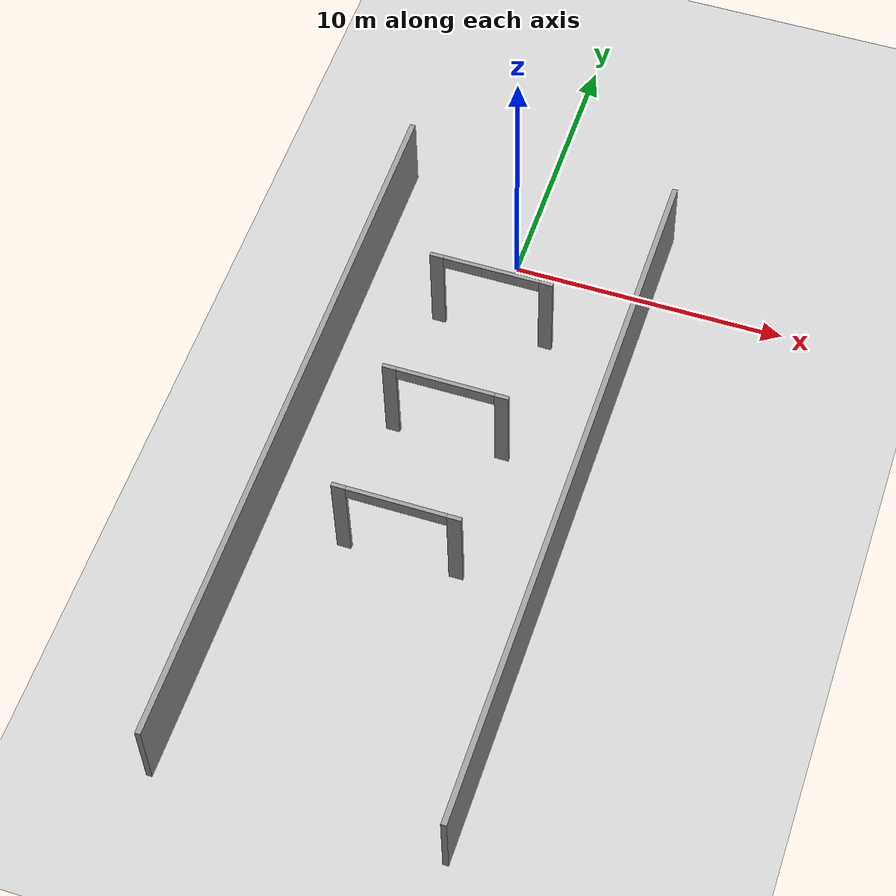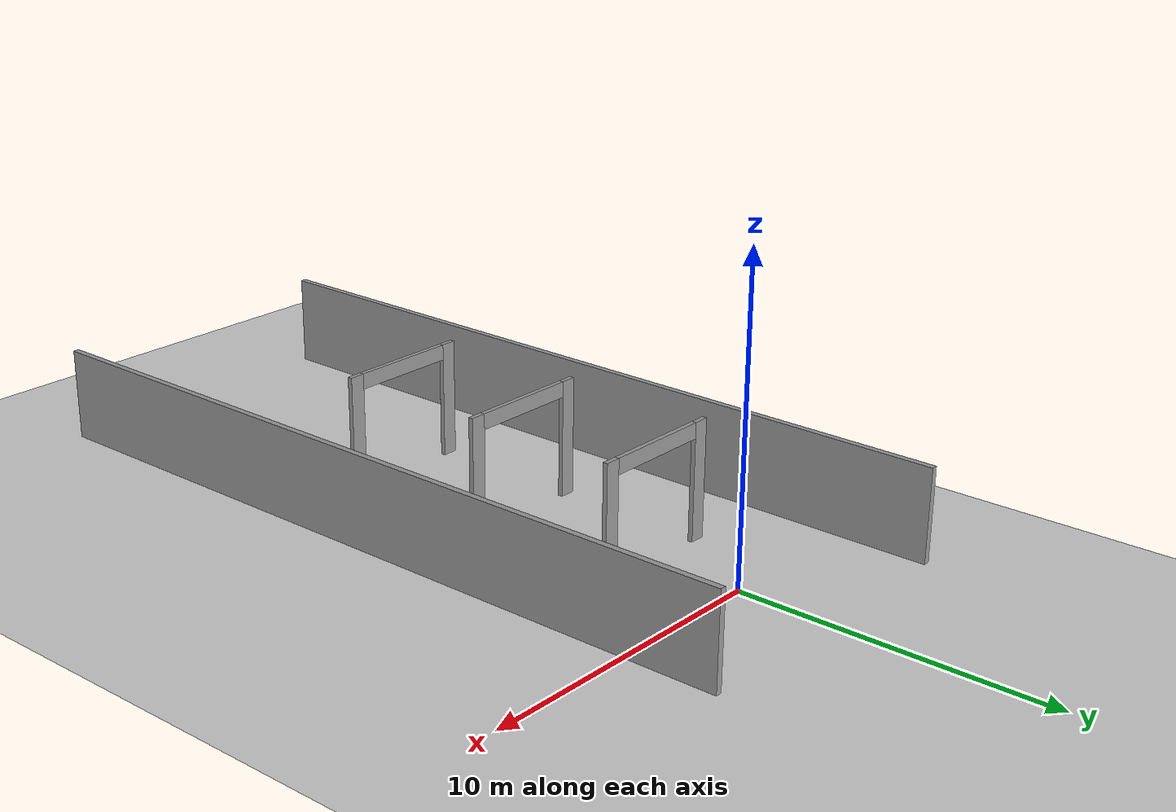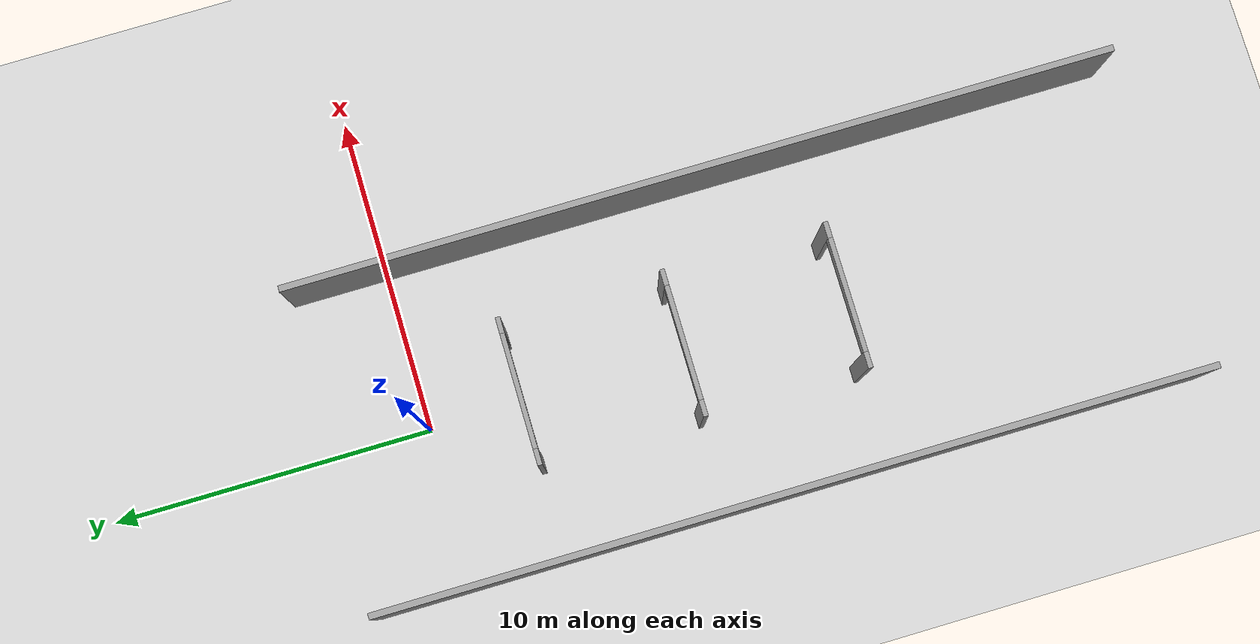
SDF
<sdf version="1.6">
 <world name="default">
  <light name="sun" type="directional">
   <pose>0 0 10 0 -0 0</pose>
   <diffuse>0.8 0.8 0.8 1</diffuse>
   <specular>0.2 0.2 0.2 1</specular>
   <attenuation>
    <range>1000</range>
    <constant>0.9</constant>
    <linear>0.01</linear>
    <quadratic>0.001</quadratic>
   </attenuation>
   <direction>-0.5 0.1 -0.9</direction>
  </light>
  <model name="ground_plane">
   <static>1</static>
   <link name="link">
    <collision name="collision">
     <geometry><plane><normal>0 0 1</normal><size>100 100</size></plane></geometry>
     <surface><friction><ode><mu>100</mu><mu2>50</mu2></ode></friction></surface>
    </collision>
    <visual name="visual">
     <cast_shadows>0</cast_shadows>
     <geometry><plane><normal>0 0 1</normal><size>100 100</size></plane></geometry>
     <material>
      <script><uri>file://media/materials/scripts/gazebo.material</uri><name>Gazebo/Grey</name></script>
     </material>
    </visual>
    <velocity_decay><linear>0</linear><angular>0</angular></velocity_decay>
   </link>
  </model>
  <physics name="default_physics" default="0" type="ode">
   <ode>
    <solver>
     <type>quick</type>
     <iters>10</iters>
     <sor>1.3</sor>
     <use_dynamic_moi_rescaling>0</use_dynamic_moi_rescaling>
    </solver>
    <constraints>
     <cfm>0</cfm>
     <erp>0.2</erp>
     <contact_max_correcting_vel>100</contact_max_correcting_vel>
     <contact_surface_layer>0.001</contact_surface_layer>
    </constraints>
   </ode>
   <max_step_size>0.004</max_step_size>
   <real_time_factor>1</real_time_factor>
   <real_time_update_rate>250</real_time_update_rate>
  </physics>
  <scene><ambient>0.4 0.4 0.4 1</ambient><background>0.7 0.7 0.7 1</background><shadows>1</shadows></scene>
  <spherical_coordinates>
   <surface_model>EARTH_WGS84</surface_model>
   <latitude_deg>0</latitude_deg>
   <longitude_deg>0</longitude_deg>
   <elevation>0</elevation>
   <heading_deg>0</heading_deg>
  </spherical_coordinates>
  <gravity>0 0 -9.8</gravity>
  <magnetic_field>6e-06 2.3e-05 -4.2e-05</magnetic_field>
  <atmosphere type="adiabatic"/>
  <model name="left_wall">
   <link name="link">
    <inertial>
     <mass>1</mass>
     <inertia>
      <ixx>0.166667</ixx>
      <ixy>0</ixy>
      <ixz>0</ixz>
      <iyy>0.166667</iyy>
      <iyz>0</iyz>
      <izz>0.166667</izz>
     </inertia>
    </inertial>
    <self_collide>1</self_collide>
    <visual name="visual">
     <geometry><box><size>0.2 26 3</size></box></geometry>
     <material>
      <script><name>Gazebo/Grey</name><uri>file://media/materials/scripts/gazebo.material</uri></script>
      <ambient>0.3 0.3 0.3 1</ambient>
      <diffuse>0.7 0.7 0.7 1</diffuse>
      <specular>0.01 0.01 0.01 1</specular>
      <emissive>0 0 0 1</emissive>
      <shader type="vertex"><normal_map>__default__</normal_map></shader>
     </material>
    </visual>
    <collision name="collision">
     <geometry><box><size>0.2 26 3</size></box></geometry>
     <surface>
      <friction>
       <ode><mu>1</mu><mu2>1</mu2><fdir1>0 0 0</fdir1><slip1>0</slip1><slip2>0</slip2></ode>
       <torsional>
        <coefficient>1</coefficient>
        <patch_radius>0</patch_radius>
        <surface_radius>0</surface_radius>
        <use_patch_radius>1</use_patch_radius>
        <ode><slip>0</slip></ode>
       </torsional>
      </friction>
      <bounce><restitution_coefficient>0</restitution_coefficient><threshold>1e+06</threshold></bounce>
      <contact>
       <collide_without_contact>0</collide_without_contact>
       <collide_without_contact_bitmask>1</collide_without_contact_bitmask>
       <collide_bitmask>1</collide_bitmask>
       <ode>
        <soft_cfm>0</soft_cfm>
        <soft_erp>0.2</soft_erp>
        <kp>1e+13</kp>
        <kd>1</kd>
        <max_vel>0.01</max_vel>
        <min_depth>0</min_depth>
       </ode>
       <bullet>
        <split_impulse>1</split_impulse>
        <split_impulse_penetration_threshold>-0.01</split_impulse_penetration_threshold>
        <soft_cfm>0</soft_cfm>
        <soft_erp>0.2</soft_erp>
        <kp>1e+13</kp>
        <kd>1</kd>
       </bullet>
      </contact>
     </surface>
    </collision>
   </link>
   <static>1</static>
   <pose>5 -10 1.5 0 -0 0</pose>
  </model>
  <model name="right_wall">
   <link name="link">
    <inertial>
     <mass>1</mass>
     <inertia>
      <ixx>0.166667</ixx>
      <ixy>0</ixy>
      <ixz>0</ixz>
      <iyy>0.166667</iyy>
      <iyz>0</iyz>
      <izz>0.166667</izz>
     </inertia>
    </inertial>
    <visual name="visual">
     <geometry><box><size>0.2 26 3</size></box></geometry>
     <material>
      <script><name>Gazebo/Grey</name><uri>file://media/materials/scripts/gazebo.material</uri></script>
      <ambient>0.3 0.3 0.3 1</ambient>
      <diffuse>0.7 0.7 0.7 1</diffuse>
      <specular>0.01 0.01 0.01 1</specular>
      <emissive>0 0 0 1</emissive>
      <shader type="vertex"><normal_map>__default__</normal_map></shader>
     </material>
    </visual>
    <collision name="collision">
     <geometry><box><size>0.2 26 3</size></box></geometry>
     <surface>
      <friction>
       <ode><mu>1</mu><mu2>1</mu2><fdir1>0 0 0</fdir1><slip1>0</slip1><slip2>0</slip2></ode>
       <torsional>
        <coefficient>1</coefficient>
        <patch_radius>0</patch_radius>
        <surface_radius>0</surface_radius>
        <use_patch_radius>1</use_patch_radius>
        <ode><slip>0</slip></ode>
       </torsional>
      </friction>
      <bounce><restitution_coefficient>0</restitution_coefficient><threshold>1e+06</threshold></bounce>
      <contact>
       <collide_without_contact>0</collide_without_contact>
       <collide_without_contact_bitmask>1</collide_without_contact_bitmask>
       <collide_bitmask>1</collide_bitmask>
       <ode>
        <soft_cfm>0</soft_cfm>
        <soft_erp>0.2</soft_erp>
        <kp>1e+13</kp>
        <kd>1</kd>
        <max_vel>0.01</max_vel>
        <min_depth>0</min_depth>
       </ode>
       <bullet>
        <split_impulse>1</split_impulse>
        <split_impulse_penetration_threshold>-0.01</split_impulse_penetration_threshold>
        <soft_cfm>0</soft_cfm>
        <soft_erp>0.2</soft_erp>
        <kp>1e+13</kp>
        <kd>1</kd>
       </bullet>
      </contact>
     </surface>
    </collision>
   </link>
   <static>1</static>
   <pose>-5 -10 1.5 0 -0 0</pose>
  </model>
  <model name="big_door">
   <link name="Wall_7">
    <inertial>
     <mass>1</mass>
     <inertia><ixx>1</ixx><ixy>0</ixy><ixz>0</ixz><iyy>1</iyy><iyz>0</iyz><izz>1</izz></inertia>
    </inertial>
    <visual name="Wall_7_Visual_0">
     <pose>-2 0 1.25 0 -0 0</pose>
     <geometry><box><size>0.5 0.15 5</size></box></geometry>
     <material>
      <script><uri>file://media/materials/scripts/gazebo.material</uri><name>Gazebo/Grey</name></script>
      <ambient>1 1 1 1</ambient>
      <shader type="pixel"><normal_map>__default__</normal_map></shader>
      <diffuse>0.7 0.7 0.7 1</diffuse>
      <specular>0.01 0.01 0.01 1</specular>
      <emissive>0 0 0 1</emissive>
     </material>
     <meta><layer>0</layer></meta>
    </visual>
    <visual name="Wall_7_Visual_1">
     <pose>2 0 1.25 0 -0 0</pose>
     <geometry><box><size>0.5 0.15 5</size></box></geometry>
     <material>
      <script><uri>file://media/materials/scripts/gazebo.material</uri><name>Gazebo/Grey</name></script>
      <ambient>1 1 1 1</ambient>
      <shader type="pixel"><normal_map>__default__</normal_map></shader>
      <diffuse>0.7 0.7 0.7 1</diffuse>
      <specular>0.01 0.01 0.01 1</specular>
      <emissive>0 0 0 1</emissive>
     </material>
     <meta><layer>0</layer></meta>
    </visual>
    <visual name="Wall_7_Visual_2">
     <pose>0 0 3.5 0 -0 0</pose>
     <geometry><box><size>3.5 0.15 0.5</size></box></geometry>
     <material>
      <script><uri>file://media/materials/scripts/gazebo.material</uri><name>Gazebo/Grey</name></script>
      <ambient>1 1 1 1</ambient>
      <shader type="pixel"><normal_map>__default__</normal_map></shader>
      <diffuse>0.7 0.7 0.7 1</diffuse>
      <specular>0.01 0.01 0.01 1</specular>
      <emissive>0 0 0 1</emissive>
     </material>
     <meta><layer>0</layer></meta>
    </visual>
    <collision name="Wall_7_Collision_0">
     <pose>-2 0 1.25 0 -0 0</pose>
     <geometry><box><size>0.5 0.15 5</size></box></geometry>
     <surface>
      <friction>
       <ode><mu>1</mu><mu2>1</mu2><fdir1>0 0 0</fdir1><slip1>0</slip1><slip2>0</slip2></ode>
       <torsional>
        <coefficient>1</coefficient>
        <patch_radius>0</patch_radius>
        <surface_radius>0</surface_radius>
        <use_patch_radius>1</use_patch_radius>
        <ode><slip>0</slip></ode>
       </torsional>
      </friction>
      <bounce><restitution_coefficient>0</restitution_coefficient><threshold>1e+06</threshold></bounce>
      <contact>
       <collide_without_contact>0</collide_without_contact>
       <collide_without_contact_bitmask>1</collide_without_contact_bitmask>
       <collide_bitmask>1</collide_bitmask>
       <ode>
        <soft_cfm>0</soft_cfm>
        <soft_erp>0.2</soft_erp>
        <kp>1e+13</kp>
        <kd>1</kd>
        <max_vel>0.01</max_vel>
        <min_depth>0</min_depth>
       </ode>
       <bullet>
        <split_impulse>1</split_impulse>
        <split_impulse_penetration_threshold>-0.01</split_impulse_penetration_threshold>
        <soft_cfm>0</soft_cfm>
        <soft_erp>0.2</soft_erp>
        <kp>1e+13</kp>
        <kd>1</kd>
       </bullet>
      </contact>
     </surface>
    </collision>
    <collision name="Wall_7_Collision_1">
     <pose>2 0 1.25 0 -0 0</pose>
     <geometry><box><size>0.5 0.15 5</size></box></geometry>
     <surface>
      <friction>
       <ode><mu>1</mu><mu2>1</mu2><fdir1>0 0 0</fdir1><slip1>0</slip1><slip2>0</slip2></ode>
       <torsional>
        <coefficient>1</coefficient>
        <patch_radius>0</patch_radius>
        <surface_radius>0</surface_radius>
        <use_patch_radius>1</use_patch_radius>
        <ode><slip>0</slip></ode>
       </torsional>
      </friction>
      <bounce><restitution_coefficient>0</restitution_coefficient><threshold>1e+06</threshold></bounce>
      <contact>
       <collide_without_contact>0</collide_without_contact>
       <collide_without_contact_bitmask>1</collide_without_contact_bitmask>
       <collide_bitmask>1</collide_bitmask>
       <ode>
        <soft_cfm>0</soft_cfm>
        <soft_erp>0.2</soft_erp>
        <kp>1e+13</kp>
        <kd>1</kd>
        <max_vel>0.01</max_vel>
        <min_depth>0</min_depth>
       </ode>
       <bullet>
        <split_impulse>1</split_impulse>
        <split_impulse_penetration_threshold>-0.01</split_impulse_penetration_threshold>
        <soft_cfm>0</soft_cfm>
        <soft_erp>0.2</soft_erp>
        <kp>1e+13</kp>
        <kd>1</kd>
       </bullet>
      </contact>
     </surface>
    </collision>
    <collision name="Wall_7_Collision_2">
     <pose>0.25 0 1.625 0 -0 0</pose>
     <geometry><box><size>4 0.15 4.25</size></box></geometry>
     <surface>
      <friction>
       <ode><mu>1</mu><mu2>1</mu2><fdir1>0 0 0</fdir1><slip1>0</slip1><slip2>0</slip2></ode>
       <torsional>
        <coefficient>1</coefficient>
        <patch_radius>0</patch_radius>
        <surface_radius>0</surface_radius>
        <use_patch_radius>1</use_patch_radius>
        <ode><slip>0</slip></ode>
       </torsional>
      </friction>
      <bounce><restitution_coefficient>0</restitution_coefficient><threshold>1e+06</threshold></bounce>
      <contact>
       <collide_without_contact>0</collide_without_contact>
       <collide_without_contact_bitmask>1</collide_without_contact_bitmask>
       <collide_bitmask>1</collide_bitmask>
       <ode>
        <soft_cfm>0</soft_cfm>
        <soft_erp>0.2</soft_erp>
        <kp>1e+13</kp>
        <kd>1</kd>
        <max_vel>0.01</max_vel>
        <min_depth>0</min_depth>
       </ode>
       <bullet>
        <split_impulse>1</split_impulse>
        <split_impulse_penetration_threshold>-0.01</split_impulse_penetration_threshold>
        <soft_cfm>0</soft_cfm>
        <soft_erp>0.2</soft_erp>
        <kp>1e+13</kp>
        <kd>1</kd>
       </bullet>
      </contact>
     </surface>
    </collision>
   </link>
   <static>1</static>
   <pose>0 -3 0 0 -0 0</pose>
  </model>
  <model name="big_door_open">
   <link name="Wall_7">
    <inertial>
     <mass>1</mass>
     <inertia><ixx>1</ixx><ixy>0</ixy><ixz>0</ixz><iyy>1</iyy><iyz>0</iyz><izz>1</izz></inertia>
    </inertial>
    <visual name="Wall_7_Visual_0">
     <pose>-2 0 1.25 0 -0 0</pose>
     <geometry><box><size>0.5 0.15 5</size></box></geometry>
     <material>
      <script><uri>file://media/materials/scripts/gazebo.material</uri><name>Gazebo/Grey</name></script>
      <ambient>0.3 0.3 0.3 1</ambient>
      <shader type="pixel"><normal_map>__default__</normal_map></shader>
      <diffuse>0.7 0.7 0.7 1</diffuse>
      <specular>0.01 0.01 0.01 1</specular>
      <emissive>0 0 0 1</emissive>
     </material>
     <meta><layer>0</layer></meta>
    </visual>
    <visual name="Wall_7_Visual_2">
     <pose>0 0 3.5 0 -0 0</pose>
     <geometry><box><size>3.5 0.15 0.5</size></box></geometry>
     <material>
      <script><uri>file://media/materials/scripts/gazebo.material</uri><name>Gazebo/Grey</name></script>
      <ambient>0.3 0.3 0.3 1</ambient>
      <shader type="pixel"><normal_map>__default__</normal_map></shader>
      <diffuse>0.7 0.7 0.7 1</diffuse>
      <specular>0.01 0.01 0.01 1</specular>
      <emissive>0 0 0 1</emissive>
     </material>
     <meta><layer>0</layer></meta>
    </visual>
    <visual name="Wall_7_Visual_1">
     <pose>2 0 1.25 0 -0 0</pose>
     <geometry><box><size>0.5 0.15 5</size></box></geometry>
     <material>
      <script><uri>file://media/materials/scripts/gazebo.material</uri><name>Gazebo/Grey</name></script>
      <ambient>0.3 0.3 0.3 1</ambient>
      <shader type="pixel"><normal_map>__default__</normal_map></shader>
      <diffuse>0.7 0.7 0.7 1</diffuse>
      <specular>0.01 0.01 0.01 1</specular>
      <emissive>0 0 0 1</emissive>
     </material>
     <meta><layer>0</layer></meta>
    </visual>
    <collision name="Wall_7_Collision_0">
     <pose>-2 0 1.25 0 -0 0</pose>
     <geometry><box><size>0.5 0.15 5</size></box></geometry>
     <surface>
      <friction>
       <ode><mu>1</mu><mu2>1</mu2><fdir1>0 0 0</fdir1><slip1>0</slip1><slip2>0</slip2></ode>
       <torsional>
        <coefficient>1</coefficient>
        <patch_radius>0</patch_radius>
        <surface_radius>0</surface_radius>
        <use_patch_radius>1</use_patch_radius>
        <ode><slip>0</slip></ode>
       </torsional>
      </friction>
      <bounce><restitution_coefficient>0</restitution_coefficient><threshold>1e+06</threshold></bounce>
      <contact>
       <collide_without_contact>0</collide_without_contact>
       <collide_without_contact_bitmask>1</collide_without_contact_bitmask>
       <collide_bitmask>1</collide_bitmask>
       <ode>
        <soft_cfm>0</soft_cfm>
        <soft_erp>0.2</soft_erp>
        <kp>1e+13</kp>
        <kd>1</kd>
        <max_vel>0.01</max_vel>
        <min_depth>0</min_depth>
       </ode>
       <bullet>
        <split_impulse>1</split_impulse>
        <split_impulse_penetration_threshold>-0.01</split_impulse_penetration_threshold>
        <soft_cfm>0</soft_cfm>
        <soft_erp>0.2</soft_erp>
        <kp>1e+13</kp>
        <kd>1</kd>
       </bullet>
      </contact>
     </surface>
    </collision>
    <collision name="Wall_7_Collision_1">
     <pose>2 0 1.25 0 -0 0</pose>
     <geometry><box><size>0.5 0.15 5</size></box></geometry>
     <surface>
      <friction>
       <ode><mu>1</mu><mu2>1</mu2><fdir1>0 0 0</fdir1><slip1>0</slip1><slip2>0</slip2></ode>
       <torsional>
        <coefficient>1</coefficient>
        <patch_radius>0</patch_radius>
        <surface_radius>0</surface_radius>
        <use_patch_radius>1</use_patch_radius>
        <ode><slip>0</slip></ode>
       </torsional>
      </friction>
      <bounce><restitution_coefficient>0</restitution_coefficient><threshold>1e+06</threshold></bounce>
      <contact>
       <collide_without_contact>0</collide_without_contact>
       <collide_without_contact_bitmask>1</collide_without_contact_bitmask>
       <collide_bitmask>1</collide_bitmask>
       <ode>
        <soft_cfm>0</soft_cfm>
        <soft_erp>0.2</soft_erp>
        <kp>1e+13</kp>
        <kd>1</kd>
        <max_vel>0.01</max_vel>
        <min_depth>0</min_depth>
       </ode>
       <bullet>
        <split_impulse>1</split_impulse>
        <split_impulse_penetration_threshold>-0.01</split_impulse_penetration_threshold>
        <soft_cfm>0</soft_cfm>
        <soft_erp>0.2</soft_erp>
        <kp>1e+13</kp>
        <kd>1</kd>
       </bullet>
      </contact>
     </surface>
    </collision>
    <collision name="Wall_7_Collision_2">
     <pose>0 0 3.5 0 -0 0</pose>
     <geometry><box><size>3.5 0.15 0.5</size></box></geometry>
     <surface>
      <friction>
       <ode><mu>1</mu><mu2>1</mu2><fdir1>0 0 0</fdir1><slip1>0</slip1><slip2>0</slip2></ode>
       <torsional>
        <coefficient>1</coefficient>
        <patch_radius>0</patch_radius>
        <surface_radius>0</surface_radius>
        <use_patch_radius>1</use_patch_radius>
        <ode><slip>0</slip></ode>
       </torsional>
      </friction>
      <bounce><restitution_coefficient>0</restitution_coefficient><threshold>1e+06</threshold></bounce>
      <contact>
       <collide_without_contact>0</collide_without_contact>
       <collide_without_contact_bitmask>1</collide_without_contact_bitmask>
       <collide_bitmask>1</collide_bitmask>
       <ode>
        <soft_cfm>0</soft_cfm>
        <soft_erp>0.2</soft_erp>
        <kp>1e+13</kp>
        <kd>1</kd>
        <max_vel>0.01</max_vel>
        <min_depth>0</min_depth>
       </ode>
       <bullet>
        <split_impulse>1</split_impulse>
        <split_impulse_penetration_threshold>-0.01</split_impulse_penetration_threshold>
        <soft_cfm>0</soft_cfm>
        <soft_erp>0.2</soft_erp>
        <kp>1e+13</kp>
        <kd>1</kd>
       </bullet>
      </contact>
     </surface>
    </collision>
   </link>
   <static>1</static>
   <pose>0 -8 0 0 -0 0</pose>
  </model>
  <model name="big_door_2">
   <link name="Wall_7">
    <inertial>
     <mass>1</mass>
     <inertia><ixx>1</ixx><ixy>0</ixy><ixz>0</ixz><iyy>1</iyy><iyz>0</iyz><izz>1</izz></inertia>
    </inertial>
    <visual name="Wall_7_Visual_1">
     <pose>2 0 1.25 0 -0 0</pose>
     <geometry><box><size>0.5 0.15 5</size></box></geometry>
     <material>
      <script><uri>file://media/materials/scripts/gazebo.material</uri><name>Gazebo/Grey</name></script>
      <ambient>1 1 1 1</ambient>
      <shader type="pixel"><normal_map>__default__</normal_map></shader>
      <diffuse>0.7 0.7 0.7 1</diffuse>
      <specular>0.01 0.01 0.01 1</specular>
      <emissive>0 0 0 1</emissive>
     </material>
     <meta><layer>0</layer></meta>
    </visual>
    <visual name="Wall_7_Visual_0">
     <pose>-2 0 1.25 0 -0 0</pose>
     <geometry><box><size>0.5 0.15 5</size></box></geometry>
     <material>
      <script><uri>file://media/materials/scripts/gazebo.material</uri><name>Gazebo/Grey</name></script>
      <ambient>1 1 1 1</ambient>
      <shader type="pixel"><normal_map>__default__</normal_map></shader>
      <diffuse>0.7 0.7 0.7 1</diffuse>
      <specular>0.01 0.01 0.01 1</specular>
      <emissive>0 0 0 1</emissive>
     </material>
     <meta><layer>0</layer></meta>
    </visual>
    <visual name="Wall_7_Visual_2">
     <pose>0 0 3.5 0 -0 0</pose>
     <geometry><box><size>3.5 0.15 0.5</size></box></geometry>
     <material>
      <script><uri>file://media/materials/scripts/gazebo.material</uri><name>Gazebo/Grey</name></script>
      <ambient>1 1 1 1</ambient>
      <shader type="pixel"><normal_map>__default__</normal_map></shader>
      <diffuse>0.7 0.7 0.7 1</diffuse>
      <specular>0.01 0.01 0.01 1</specular>
      <emissive>0 0 0 1</emissive>
     </material>
     <meta><layer>0</layer></meta>
    </visual>
    <collision name="Wall_7_Collision_2">
     <pose>0.25 0 1.625 0 -0 0</pose>
     <geometry><box><size>4 0.15 4.25</size></box></geometry>
     <surface>
      <friction>
       <ode><mu>1</mu><mu2>1</mu2><fdir1>0 0 0</fdir1><slip1>0</slip1><slip2>0</slip2></ode>
       <torsional>
        <coefficient>1</coefficient>
        <patch_radius>0</patch_radius>
        <surface_radius>0</surface_radius>
        <use_patch_radius>1</use_patch_radius>
        <ode><slip>0</slip></ode>
       </torsional>
      </friction>
      <bounce><restitution_coefficient>0</restitution_coefficient><threshold>1e+06</threshold></bounce>
      <contact>
       <collide_without_contact>0</collide_without_contact>
       <collide_without_contact_bitmask>1</collide_without_contact_bitmask>
       <collide_bitmask>1</collide_bitmask>
       <ode>
        <soft_cfm>0</soft_cfm>
        <soft_erp>0.2</soft_erp>
        <kp>1e+13</kp>
        <kd>1</kd>
        <max_vel>0.01</max_vel>
        <min_depth>0</min_depth>
       </ode>
       <bullet>
        <split_impulse>1</split_impulse>
        <split_impulse_penetration_threshold>-0.01</split_impulse_penetration_threshold>
        <soft_cfm>0</soft_cfm>
        <soft_erp>0.2</soft_erp>
        <kp>1e+13</kp>
        <kd>1</kd>
       </bullet>
      </contact>
     </surface>
    </collision>
    <collision name="Wall_7_Collision_1">
     <pose>2 0 1.25 0 -0 0</pose>
     <geometry><box><size>0.5 0.15 5</size></box></geometry>
     <surface>
      <friction>
       <ode><mu>1</mu><mu2>1</mu2><fdir1>0 0 0</fdir1><slip1>0</slip1><slip2>0</slip2></ode>
       <torsional>
        <coefficient>1</coefficient>
        <patch_radius>0</patch_radius>
        <surface_radius>0</surface_radius>
        <use_patch_radius>1</use_patch_radius>
        <ode><slip>0</slip></ode>
       </torsional>
      </friction>
      <bounce><restitution_coefficient>0</restitution_coefficient><threshold>1e+06</threshold></bounce>
      <contact>
       <collide_without_contact>0</collide_without_contact>
       <collide_without_contact_bitmask>1</collide_without_contact_bitmask>
       <collide_bitmask>1</collide_bitmask>
       <ode>
        <soft_cfm>0</soft_cfm>
        <soft_erp>0.2</soft_erp>
        <kp>1e+13</kp>
        <kd>1</kd>
        <max_vel>0.01</max_vel>
        <min_depth>0</min_depth>
       </ode>
       <bullet>
        <split_impulse>1</split_impulse>
        <split_impulse_penetration_threshold>-0.01</split_impulse_penetration_threshold>
        <soft_cfm>0</soft_cfm>
        <soft_erp>0.2</soft_erp>
        <kp>1e+13</kp>
        <kd>1</kd>
       </bullet>
      </contact>
     </surface>
    </collision>
    <collision name="Wall_7_Collision_0">
     <pose>-2 0 1.25 0 -0 0</pose>
     <geometry><box><size>0.5 0.15 5</size></box></geometry>
     <surface>
      <friction>
       <ode><mu>1</mu><mu2>1</mu2><fdir1>0 0 0</fdir1><slip1>0</slip1><slip2>0</slip2></ode>
       <torsional>
        <coefficient>1</coefficient>
        <patch_radius>0</patch_radius>
        <surface_radius>0</surface_radius>
        <use_patch_radius>1</use_patch_radius>
        <ode><slip>0</slip></ode>
       </torsional>
      </friction>
      <bounce><restitution_coefficient>0</restitution_coefficient><threshold>1e+06</threshold></bounce>
      <contact>
       <collide_without_contact>0</collide_without_contact>
       <collide_without_contact_bitmask>1</collide_without_contact_bitmask>
       <collide_bitmask>1</collide_bitmask>
       <ode>
        <soft_cfm>0</soft_cfm>
        <soft_erp>0.2</soft_erp>
        <kp>1e+13</kp>
        <kd>1</kd>
        <max_vel>0.01</max_vel>
        <min_depth>0</min_depth>
       </ode>
       <bullet>
        <split_impulse>1</split_impulse>
        <split_impulse_penetration_threshold>-0.01</split_impulse_penetration_threshold>
        <soft_cfm>0</soft_cfm>
        <soft_erp>0.2</soft_erp>
        <kp>1e+13</kp>
        <kd>1</kd>
       </bullet>
      </contact>
     </surface>
    </collision>
   </link>
   <static>1</static>
   <pose>0 -13 0 0 -0 0</pose>
  </model>
 </world>
</sdf>
